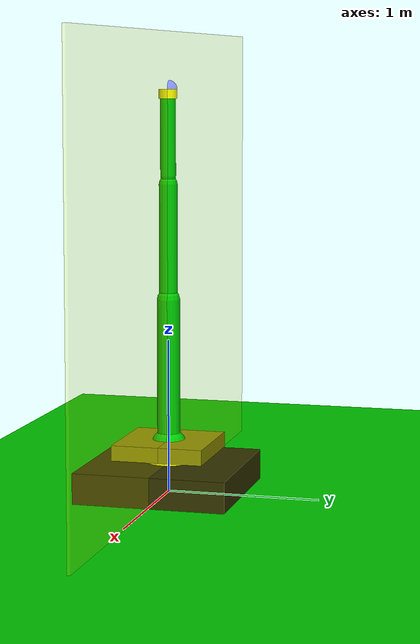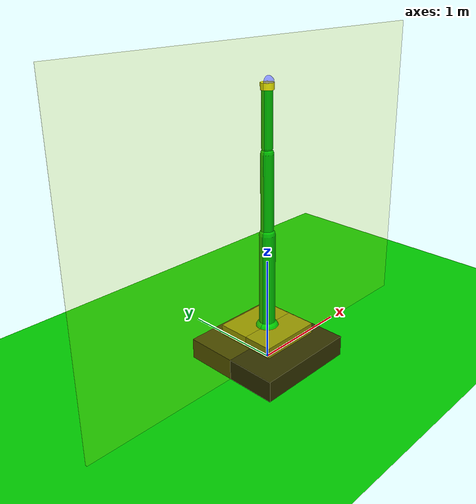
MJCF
<mujoco model="world">
  <compiler coordinate="local" inertiafromgeom="true"/>

  <option gravity="0 0 -9.81" integrator="RK4" timestep="0.005"/>

  <default>
    <joint type="hinge"  pos="0 0 0" axis="0 1 0" limited='true' damping="0.05" />
    <geom type="capsule" conaffinity="1" contype="1" condim='3'
          friction=".1 .1 .1" rgba="0 .8 .0 1" pos='0 0 0' margin="0.001"/>
    <site type="sphere" rgba="1 1 1 0.5" pos="0 0 0" size="0.0001"/>
    <motor ctrllimited='true' gear="10" />
  </default>

  <asset>
    <texture name="texplane" type="2d" builtin="checker" rgb1=".2 .9 .4" rgb2=".1 .7 .2" width="100" height="100"/>
    <material name='MatPlane' reflectance='0.0' texture="texplane" texrepeat="1 1" texuniform="true"/>
  </asset>

  <visual>
    <quality shadowsize="4096"/>
  </visual>

  <custom>
    <numeric data="0" name="frame_skip"/>
  </custom>

  <size nstack="3000"/>

  <worldbody>
    <light diffuse=".5 .5 .5" pos="0 30 30" dir="0 -1 -1"/>
    <geom name='floor' size='10 10 0.125' type='plane' material="MatPlane"/>
    <body name="scorpion" pos="0 0 0">
  <body name="scorpion.cart" pos="0 0 0">
    <geom type='box' pos="0 0 0.1" size='.5 .5 .1' rgba=".2 .2 .0 1"/>
    <body name="scorpion.cart.head"  pos="0 0 0">
      <joint name="scorpion.cart.head.a" axis="0 0 1" range='-90 +90'/>
      <geom type='cylinder' fromto='0 0 .2  0 0 0.25' size='.15' rgba="1.5 1.5 0 1"/>
      <body name="tentacle" pos="0 0 .2">
  <geom type='box' pos="0 0 0.1" size='.3 .3 .05' rgba="0.6 0.6 0 1"/>
  <geom type='sphere' pos="0 0 .1" size="0.12"/>
  <body name="tentacle.s1" pos="0 0 0.17">
    <joint name="tentacle.s1.a" range=' -70 +70'/>
    <geom fromto="0 0 0 0 0 .9" size="0.075"/>
    <body name="tentacle.s2" pos="0 0 .95">
      <joint name="tentacle.s2.a" range=' -120 +120'/>
      <geom fromto="0 0 0 0 0 .7" size="0.06"/>
      <body name="tentacle.s3" pos="0 0 .75">
        <joint name="tentacle.s3.a" range=' -150 +150'/>
        <geom fromto="0 0 0 0 0 .5" size="0.05"/>
        <body name="tentacle.head" pos="0 0 .5">
          <geom type='cylinder' fromto='0 0 0  0 0 .06' rgba="1.2 1.2 0. 1" size='.06'/>
          <site name="tentacle.head" pos="0 0 0.06" rgba=".2 .2 1.5 0.5" size='.06'/>
        </body>
      </body>
    </body>
  </body>
</body>

      <body name="target" pos="0 0 0">
  <site name="target.surface" type= "box" size="2 0.01 1.5" pos="0 0 1.5" rgba="1 1 0 .1"/>
  <body name="target.coords" pos="0 0 1.5">
    <joint name="target.coords.x" type="slide" axis="1 0 0" range="-2 +2" />
    <joint name="target.coords.z" type="slide" axis="0 0 1" range="-2 +2" />
    <geom type="sphere" conaffinity="0" contype="0" rgba="0. 0. 0. 0." size=".05" mass="1e-3"/>
    <site name="target" pos="0 0 0" size=".05" rgba="1.5 1.5 0. 0.9" />
  </body>
</body>

    </body>
  </body>
</body>

  </worldbody>

  <actuator>
  <motor name="scorpion.cart.m.1" ctrlrange="-1. +1." joint="scorpion.cart.head.a"/>
</actuator>

<actuator>
  <motor name="tentacle.m.1" ctrlrange="-200 +200" joint="tentacle.s1.a"/>
  <motor name="tentacle.m.2" ctrlrange="-150 +150" joint="tentacle.s1.a"/>
  <motor name="tentacle.m.3" ctrlrange=" -50  +50" joint="tentacle.s3.a"/>
</actuator>

</mujoco>
